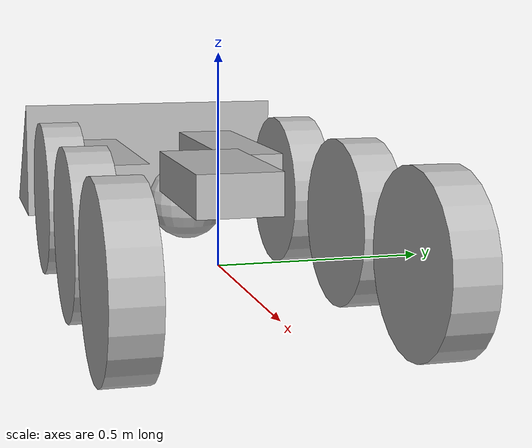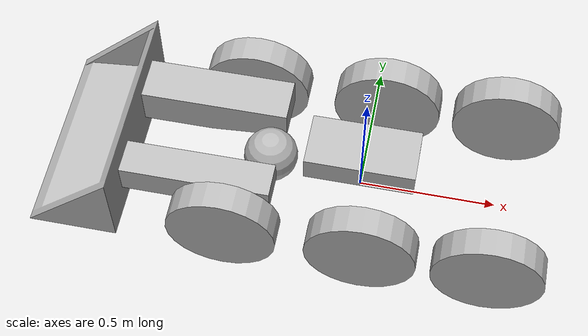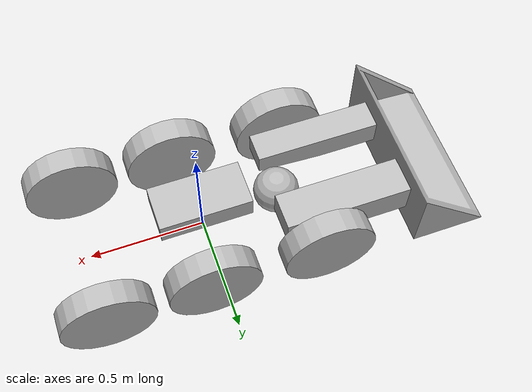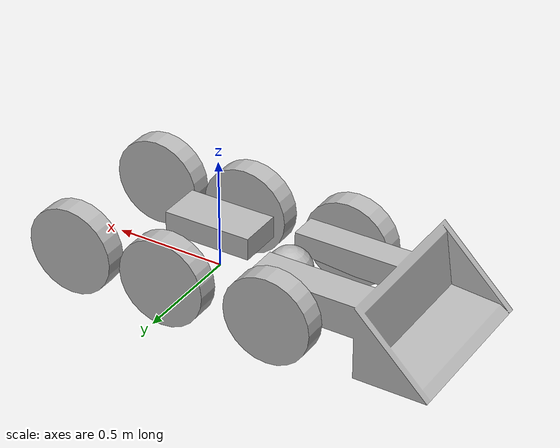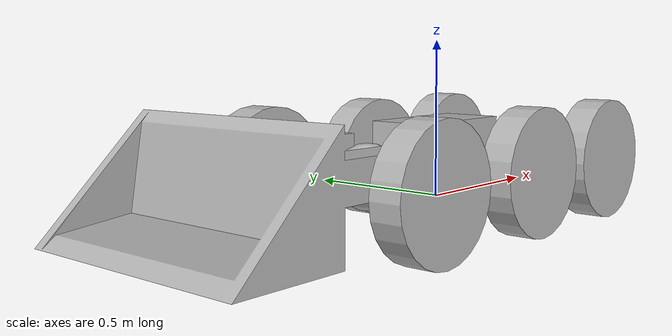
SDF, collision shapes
<?xml version='1.0'?>
<sdf version='1.4'>
  <model name="my_robot_six">

    <static>false</static>

    <link name='chassis'>
      <pose>0 0 .2 0 0 0</pose>

      <collision name='collision'>
        <geometry>
          <box>
            <size>.4 .2 .1</size>
          </box>
        </geometry>
      </collision>

      <visual name='visual'>
        <geometry>
          <mesh>
            <scale>0.2 0.2 0.2</scale>
            <uri>model://my_robot_six/meshes/six_wheel.dae</uri>
          </mesh>
        </geometry>
      </visual>

      <collision name='caster_collision'>
        <pose>-0.34 0 -0.1 0 0 0</pose>

        <geometry>
      	  <sphere>
      	    <radius>.1</radius>
          </sphere>
        </geometry>

        <surface>
          <friction>
      	    <ode>
      	      <mu>0</mu>
      	      <mu2>0</mu2>
      	      <slip1>1.0</slip1>
      	      <slip2>1.0</slip2>
      	    </ode>
          </friction>
        </surface>
      </collision>

      <visual name='caster_visual'>
        <pose>-0.34 0 -0.1 0 0 0</pose>

        <geometry>
          <sphere>
            <radius>.1</radius>
          </sphere>
        </geometry>

      </visual>

      <sensor name='body_contact' type='contact'>
        <contact>
          <collision>collision</collision>
        </contact>
        <update_rate> 5 </update_rate>
      </sensor>
    </link>

    <link name="scooper">
      <pose>-0.85 0 0.1 0 0 0</pose>

        <collision name="collision">
          <geometry>
            <mesh>
              <scale>0.2 0.2 0.2</scale>
              <uri>model://my_robot_six/meshes/scoop.dae</uri>
            </mesh>
          </geometry>
        </collision>

        <visual name="visual">
          <geometry>
            <mesh>
              <scale>0.2 0.2 0.2</scale>
              <uri>model://my_robot_six/meshes/scoop.dae</uri>
            </mesh>
          </geometry>
        </visual>
    </link>

    <link name="left_wheel">
      <pose>0.5 0.32 0.1 0 1.5707 1.5707</pose>

        <collision name="collision">
          <geometry>
            <cylinder>
              <radius>.2</radius>
              <length>.1</length>
            </cylinder>
          </geometry>
        </collision>

        <visual name="visual">
          <geometry>
            <mesh>
              <scale>0.2 0.2 0.2</scale>
              <uri>model://my_robot_six/meshes/wheel.dae</uri>
            </mesh>
          </geometry>
        </visual>

      <sensor name='left_wheel_contact' type='contact'>
        <contact>
          <collision>collision</collision>
        </contact>
        <update_rate> 5 </update_rate>
      </sensor>
    </link>

    <link name="right_wheel">
      <pose>0.5 -0.32 0.1 0 1.5707 1.5707</pose>

      <collision name="collision">
        <geometry>
          <cylinder>
            <radius>.2</radius>
            <length>.1</length>
          </cylinder>
        </geometry>
      </collision>

      <visual name="visual">
        <geometry>
            <mesh>
              <scale>0.2 0.2 -0.2</scale>
              <uri>model://my_robot_six/meshes/wheel.dae</uri>
            </mesh>
        </geometry>
      </visual>

      <sensor name='right_wheel_contact' type='contact'>
        <contact>
          <collision>collision</collision>
        </contact>
        <update_rate> 5 </update_rate>
      </sensor>
    </link>

    <link name="right_wheel1">
      <pose>0.05 -0.32 0.1 0 1.5707 1.5707</pose>

      <collision name="collision">
        <geometry>
          <cylinder>
            <radius>.2</radius>
            <length>.1</length>
          </cylinder>
        </geometry>
      </collision>

      <visual name="visual">
        <geometry>
            <mesh>
              <scale>0.2 0.2 -0.2</scale>
              <uri>model://my_robot_six/meshes/wheel.dae</uri>
            </mesh>
        </geometry>
      </visual>
    </link>

    <link name="left_wheel1">
      <pose>0.05 0.32 0.1 0 1.5707 1.5707</pose>

        <collision name="collision">
          <geometry>
            <cylinder>
              <radius>.2</radius>
              <length>.1</length>
            </cylinder>
          </geometry>
        </collision>

        <visual name="visual">
          <geometry>
            <mesh>
              <scale>0.2 0.2 0.2</scale>
              <uri>model://my_robot_six/meshes/wheel.dae</uri>
            </mesh>
          </geometry>
        </visual>
      </link>

    <link name="right_wheel2">
      <pose>-0.45 -0.32 0.1 0 1.5707 1.5707</pose>

      <collision name="collision">
        <geometry>
          <cylinder>
            <radius>.2</radius>
            <length>.1</length>
          </cylinder>
        </geometry>
      </collision>

      <visual name="visual">
        <geometry>
            <mesh>
              <scale>0.2 0.2 -0.2</scale>
              <uri>model://my_robot_six/meshes/wheel.dae</uri>
            </mesh>
        </geometry>
      </visual>
    </link>

    <link name="left_wheel2">
      <pose>-0.45 0.32 0.1 0 1.5707 1.5707</pose>

        <collision name="collision">
          <geometry>
            <cylinder>
              <radius>.2</radius>
              <length>.1</length>
            </cylinder>
          </geometry>
        </collision>

        <visual name="visual">
          <geometry>
            <mesh>
              <scale>0.2 0.2 0.2</scale>
              <uri>model://my_robot_six/meshes/wheel.dae</uri>
            </mesh>
          </geometry>
        </visual>
      </link>

    <joint type="revolute" name="left_wheel_hinge">
      <pose>0 0 -0.03 0 0 0</pose>
      <child>left_wheel</child>
      <parent>chassis</parent>
      <axis>
        <xyz>0 1 0</xyz>
      </axis>
    </joint>

    <joint type="revolute" name="right_wheel_hinge">
      <pose>0 0 0.03 0 0 0</pose>
      <child>right_wheel</child>
      <parent>chassis</parent>
      <axis>
        <xyz>0 1 0</xyz>
      </axis>
    </joint>

    <joint type="revolute" name="left_wheel_hinge1">
      <pose>0 0 -0.03 0 0 0</pose>
      <child>left_wheel1</child>
      <parent>chassis</parent>
      <axis>
        <xyz>0 1 0</xyz>
      </axis>
    </joint>

    <joint type="revolute" name="right_wheel_hinge1">
      <pose>0 0 0.03 0 0 0</pose>
      <child>right_wheel1</child>
      <parent>chassis</parent>
      <axis>
        <xyz>0 1 0</xyz>
      </axis>
    </joint>

    <joint type="revolute" name="left_wheel_hinge2">
      <pose>0 0 -0.03 0 0 0</pose>
      <child>left_wheel2</child>
      <parent>chassis</parent>
      <axis>
        <xyz>0 1 0</xyz>
      </axis>
    </joint>

    <joint type="revolute" name="right_wheel_hinge2">
      <pose>0 0 0.03 0 0 0</pose>
      <child>right_wheel2</child>
      <parent>chassis</parent>
      <axis>
        <xyz>0 1 0</xyz>
      </axis>
    </joint>

    <joint type="revolute" name="scoop_hinge">
      <pose>0 0 0 0 0 0</pose>
      <child>scooper</child>
      <parent>chassis</parent>
      <axis>
        <xyz>1 0 0</xyz>
      </axis>
    </joint>

    <plugin name="twowheel" filename="libtwowheel.so"/>
  </model>
</sdf>
